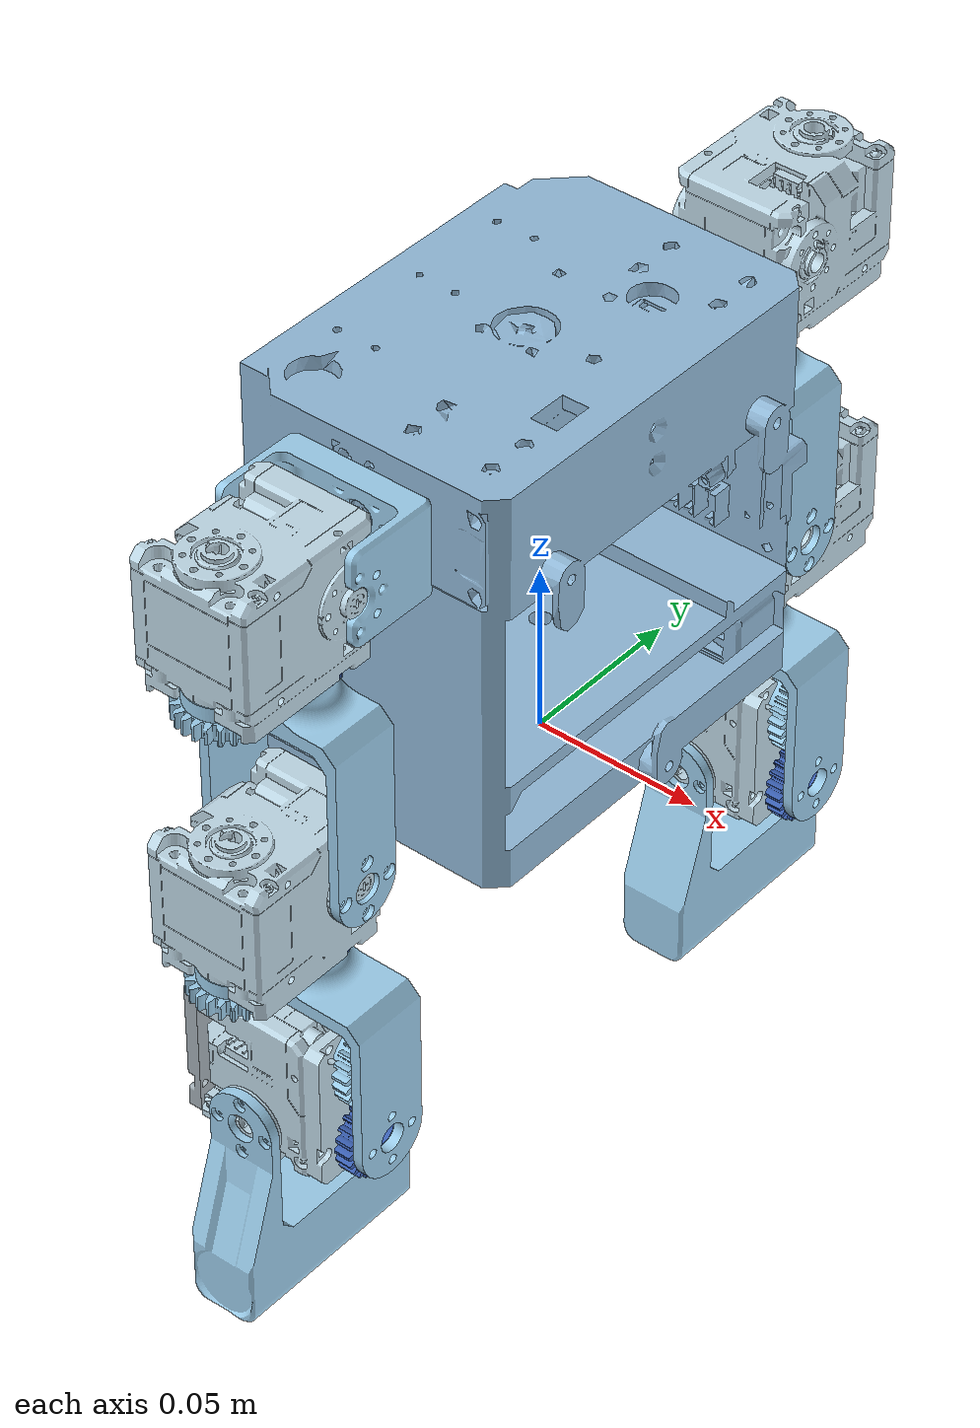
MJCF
<mujoco model="toddlerbot_arms_fixed_scene"><include file="toddlerbot_arms_fixed.xml" /><statistic center="0 0 -0.05" extent="0.6" /><visual><headlight diffuse="0.6 0.6 0.6" ambient="0.3 0.3 0.3" specular="0 0 0" /><rgba haze="0.15 0.25 0.35 1" /><global azimuth="160" elevation="-20" offwidth="1280" offheight="720" /></visual><worldbody><light pos="0 0 1.5" dir="0 0 -1" directional="true" /><camera name="perspective" pos="0.7 -0.7 0.35" xyaxes="1 1 0 -1 1 3" mode="trackcom" /><camera name="side" pos="0 -1 0.25" xyaxes="1 0 0 0 1 3" mode="trackcom" /><camera name="top" pos="0 0 0.65" xyaxes="0 1 0 -1 0 0" mode="trackcom" /><camera name="front" pos="1 0 0.25" xyaxes="0 1 0 -1 0 3" mode="trackcom" /></worldbody></mujoco>

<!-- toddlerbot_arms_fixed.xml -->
<mujoco model="toddlerbot_arms">
  <compiler angle="radian" autolimits="true" />

  <asset>
    <mesh name="torso_visual" file="../assemblies/toddlerbot_arms/meshes/torso_visual.stl" />
    <mesh name="left_sho_pitch_link_visual" file="../assemblies/left_arm_hand/meshes/left_sho_pitch_link_visual.stl" />
    <mesh name="left_2xl430_gears_visual" file="../assemblies/left_arm_hand/meshes/left_2xl430_gears_visual.stl" />
    <mesh name="left_spur_1m_24t_drive_visual" file="../assemblies/left_arm_hand/meshes/left_spur_1m_24t_drive_visual.stl" />
    <mesh name="left_spur_1m_24t_driven_visual" file="../assemblies/left_arm_hand/meshes/left_spur_1m_24t_driven_visual.stl" />
    <mesh name="left_sho_yaw_link_visual" file="../assemblies/left_arm_hand/meshes/left_sho_yaw_link_visual.stl" />
    <mesh name="left_2xl430_gears_2_visual" file="../assemblies/left_arm_hand/meshes/left_2xl430_gears_2_visual.stl" />
    <mesh name="left_spur_1m_24t_drive_2_visual" file="../assemblies/left_arm_hand/meshes/left_spur_1m_24t_drive_2_visual.stl" />
    <mesh name="left_spur_1m_24t_driven_2_visual" file="../assemblies/left_arm_hand/meshes/left_spur_1m_24t_driven_2_visual.stl" />
    <mesh name="left_elb_yaw_link_visual" file="../assemblies/left_arm_hand/meshes/left_elb_yaw_link_visual.stl" />
    <mesh name="left_spur_1m_24t_driven_3_visual" file="../assemblies/left_arm_hand/meshes/left_spur_1m_24t_driven_3_visual.stl" />
    <mesh name="left_2xl430_gears_3_visual" file="../assemblies/left_arm_hand/meshes/left_2xl430_gears_3_visual.stl" />
    <mesh name="left_spur_1m_24t_drive_3_visual" file="../assemblies/left_arm_hand/meshes/left_spur_1m_24t_drive_3_visual.stl" />
    <mesh name="left_hand_visual" file="../assemblies/left_arm_hand/meshes/left_hand_visual.stl" />
    <mesh name="left_wrist_bearing_plate_visual" file="../assemblies/left_arm_hand/meshes/left_wrist_bearing_plate_visual.stl" />
    <mesh name="right_sho_pitch_link_visual" file="../assemblies/right_arm_hand/meshes/right_sho_pitch_link_visual.stl" />
    <mesh name="right_2xl430_gears_visual" file="../assemblies/right_arm_hand/meshes/right_2xl430_gears_visual.stl" />
    <mesh name="right_spur_1m_24t_drive_visual" file="../assemblies/right_arm_hand/meshes/right_spur_1m_24t_drive_visual.stl" />
    <mesh name="right_spur_1m_24t_driven_visual" file="../assemblies/right_arm_hand/meshes/right_spur_1m_24t_driven_visual.stl" />
    <mesh name="right_sho_yaw_link_visual" file="../assemblies/right_arm_hand/meshes/right_sho_yaw_link_visual.stl" />
    <mesh name="right_2xl430_gears_2_visual" file="../assemblies/right_arm_hand/meshes/right_2xl430_gears_2_visual.stl" />
    <mesh name="right_spur_1m_24t_drive_2_visual" file="../assemblies/right_arm_hand/meshes/right_spur_1m_24t_drive_2_visual.stl" />
    <mesh name="right_spur_1m_24t_driven_2_visual" file="../assemblies/right_arm_hand/meshes/right_spur_1m_24t_driven_2_visual.stl" />
    <mesh name="right_elb_yaw_link_visual" file="../assemblies/right_arm_hand/meshes/right_elb_yaw_link_visual.stl" />
    <mesh name="right_spur_1m_24t_driven_3_visual" file="../assemblies/right_arm_hand/meshes/right_spur_1m_24t_driven_3_visual.stl" />
    <mesh name="right_2xl430_gears_3_visual" file="../assemblies/right_arm_hand/meshes/right_2xl430_gears_3_visual.stl" />
    <mesh name="right_spur_1m_24t_drive_3_visual" file="../assemblies/right_arm_hand/meshes/right_spur_1m_24t_drive_3_visual.stl" />
    <mesh name="right_hand_visual" file="../assemblies/right_arm_hand/meshes/right_hand_visual.stl" />
    <mesh name="right_wrist_bearing_plate_visual" file="../assemblies/right_arm_hand/meshes/right_wrist_bearing_plate_visual.stl" />
  </asset>

  <worldbody>
    <site name="torso" fromto="0.01 0 0.4 -0.01 0 0.4" type="cylinder" size="0.005 0.005 1" group="3" /><geom type="mesh" rgba="0.575684 0.733467 0.856322 1" mesh="torso_visual" class="visual" />
    <body name="sho_pitch_link" pos="-0.003 0.062 0.104237" quat="0.707107 -0.707107 0 0">
      <inertial pos="5.82542e-11 -5.12646e-05 0.00824408" quat="0.0155166 0.706937 0.0155166 0.706937" mass="0.0086" diaginertia="3.08064e-06 2.9104e-06 1.22729e-06" />
      <joint name="left_sho_pitch" pos="0 0 0" axis="0 0 1" range="-3.14159 1.5708" damping="0.195" armature="0.002" />
      <geom type="mesh" rgba="0.615686 0.811765 0.929412 1" mesh="left_sho_pitch_link_visual" class="visual" />
      <body name="2xl430_gears" pos="-0.019 0.001 0.027" quat="0 -0.707107 0 0.707107">
        <inertial pos="-0.0115794 -0.00242258 -0.0185511" quat="-0.0158908 0.69769 -0.13596 0.703201" mass="0.118" diaginertia="3.59112e-05 3.27863e-05 2.73235e-05" />
        <joint name="left_sho_roll" pos="0 0 0" axis="0 0 1" range="-1.5708 0" damping="0.153" armature="0.008" />
        <geom type="mesh" rgba="0.75606 0.858047 0.913203 1" mesh="left_2xl430_gears_visual" class="visual" />
        <body name="spur_1m_24t_drive" pos="-0.024 -0.019 -0.019" quat="0.707107 0.707107 0 0">
          <inertial pos="0 0 0.00479491" quat="0.5 0.5 -0.5 0.5" mass="0.0032" diaginertia="2.38389e-07 1.40193e-07 1.40193e-07" />
          <joint name="left_sho_yaw_drive" pos="0 0 0" axis="0 0 1" range="-1.5708 1.5708" damping="0.153" armature="0.008" />
          <geom type="mesh" rgba="0.615686 0.811765 0.929412 1" mesh="left_spur_1m_24t_drive_visual" class="visual" />
        </body>
        <body name="spur_1m_24t_driven" pos="-3.58071e-10 -0.027 -0.019" quat="0.707107 0.707107 0 0">
          <inertial pos="0 0 0.0216102" mass="0.0172" diaginertia="1.08021e-05 7.42977e-06 4.68733e-06" />
          <joint name="left_sho_yaw_driven" pos="0 0 0" axis="0 0 1" range="-1.5708 1.5708" damping="0.153" armature="0.008" />
          <geom type="mesh" rgba="0.231373 0.380392 0.705882 1" mesh="left_spur_1m_24t_driven_visual" class="visual" />
          <geom pos="0 0 0.0016" quat="0 -1 0 0" type="mesh" rgba="0.615686 0.811765 0.929412 1" mesh="left_sho_yaw_link_visual" class="visual" />
          <body name="2xl430_gears_2" pos="0 0.019 0.0606" quat="0.707107 -0.707107 0 0">
            <inertial pos="-0.0115794 -0.00242258 -0.0185511" quat="-0.0158908 0.69769 -0.13596 0.703201" mass="0.118" diaginertia="3.59112e-05 3.27863e-05 2.73235e-05" />
            <joint name="left_elbow_roll" pos="0 0 0" axis="0 0 1" range="-1.5708 1.5708" damping="0.153" armature="0.008" />
            <geom type="mesh" rgba="0.75606 0.858047 0.913203 1" mesh="left_2xl430_gears_2_visual" class="visual" />
            <body name="spur_1m_24t_drive_2" pos="-0.024 -0.019 -0.019" quat="0.707107 0.707107 0 0">
              <inertial pos="0 0 0.00479491" quat="0.5 0.5 -0.5 0.5" mass="0.0032" diaginertia="2.38389e-07 1.40193e-07 1.40193e-07" />
              <joint name="left_elbow_yaw_drive" pos="0 0 0" axis="0 0 1" range="-1.5708 1.5708" damping="0.153" armature="0.008" />
              <geom type="mesh" rgba="0.615686 0.811765 0.929412 1" mesh="left_spur_1m_24t_drive_2_visual" class="visual" />
            </body>
            <body name="spur_1m_24t_driven_2" pos="-3.58069e-10 -0.027 -0.019" quat="0.5 0.5 0.5 -0.5">
              <inertial pos="0.00116139 -4.04035e-08 0.025284" quat="0.665601 0.238694 0.238694 0.665601" mass="0.0229" diaginertia="1.97992e-05 1.15815e-05 1.01733e-05" />
              <joint name="left_elbow_yaw_driven" pos="0 0 0" axis="0 0 1" range="-1.5708 1.5708" damping="0.153" armature="0.008" />
              <geom type="mesh" rgba="0.231373 0.380392 0.705882 1" mesh="left_spur_1m_24t_driven_2_visual" class="visual" />
              <geom pos="0 0 0.0016" quat="0 0.707107 -0.707107 0" type="mesh" rgba="0.615686 0.811765 0.929412 1" mesh="left_elb_yaw_link_visual" class="visual" />
              <geom pos="0.0253 0 0.0536" quat="-0.707107 0 -0.707107 0" type="mesh" rgba="0.231373 0.380392 0.705882 1" mesh="left_spur_1m_24t_driven_3_visual" class="visual" />
              <body name="2xl430_gears_3" pos="0.0237 0 0.0536" quat="-0.5 0.5 -0.5 0.5">
                <inertial pos="0.000431007 0.0114203 -0.025465" quat="0.750271 0.658201 -0.0437595 0.0441611" mass="0.1229" diaginertia="3.89635e-05 3.40271e-05 3.0248e-05" />
                <joint name="left_wrist_roll_driven" pos="0 0 0" axis="0 0 1" range="-1.5708 1.5708" damping="0.153" armature="0.008" />
                <geom type="mesh" rgba="0.75606 0.858047 0.913203 1" mesh="left_2xl430_gears_3_visual" class="visual" />
                <geom pos="0.0155 0 -0.045" quat="0.707107 0 0 -0.707107" type="mesh" rgba="0.644963 0.690118 0.717068 1" mesh="left_wrist_bearing_plate_visual" class="visual" />
                <body name="spur_1m_24t_drive_3" pos="-1.52441e-10 0.024 -0.008" quat="0.707107 0 0 -0.707107">
                  <inertial pos="0 0 0.00479491" quat="0.5 0.5 -0.5 0.5" mass="0.0032" diaginertia="2.38389e-07 1.40193e-07 1.40193e-07" />
                  <joint name="left_wrist_roll_drive" pos="0 0 0" axis="0 0 1" range="-1.5708 1.5708" damping="0.153" armature="0.008" />
                  <geom type="mesh" rgba="0.615686 0.811765 0.929412 1" mesh="left_spur_1m_24t_drive_3_visual" class="visual" />
                </body>
                <body name="hand" pos="0.019 -3.58081e-10 -0.027" quat="0.707107 0 0.707107 0">
                  <inertial pos="-4.30384e-08 -0.0497238 -0.0179336" quat="0.739676 0.672963 4.83075e-07 -2.50564e-06" mass="0.017" diaginertia="9.49214e-06 6.68579e-06 4.0511e-06" />
                  <joint name="left_wrist_pitch" pos="0 0 0" axis="0 0 1" range="-1.5708 1.5708" damping="0.153" armature="0.008" />
                  <geom type="mesh" rgba="0.615686 0.811765 0.929412 1" mesh="left_hand_visual" class="visual" />
                </body>
              </body>
            </body>
          </body>
        </body>
      </body>
    </body>
    <body name="sho_pitch_link_2" pos="-0.003 -0.062 0.104237" quat="0 0 0.707107 -0.707107">
      <inertial pos="5.82542e-11 -5.12646e-05 0.00824408" quat="0.0155166 0.706937 0.0155166 0.706937" mass="0.0086" diaginertia="3.08064e-06 2.9104e-06 1.22729e-06" />
      <joint name="right_sho_pitch" pos="0 0 0" axis="0 0 1" range="-1.5708 3.14159" damping="0.195" armature="0.002" />
      <geom type="mesh" rgba="0.615686 0.811765 0.929412 1" mesh="right_sho_pitch_link_visual" class="visual" />
      <body name="2xl430_gears_4" pos="-0.019 0.001 0.027" quat="0 0.707107 0 -0.707107">
        <inertial pos="-0.0115794 -0.00242258 -0.0185511" quat="-0.0158908 0.69769 -0.13596 0.703201" mass="0.118" diaginertia="3.59112e-05 3.27863e-05 2.73235e-05" />
        <joint name="right_sho_roll" pos="0 0 0" axis="0 0 1" range="-1.5708 0" damping="0.153" armature="0.008" />
        <geom type="mesh" rgba="0.75606 0.858047 0.913203 1" mesh="right_2xl430_gears_visual" class="visual" />
        <body name="spur_1m_24t_drive_4" pos="-0.024 -0.019 -0.019" quat="0.707107 0.707107 0 0">
          <inertial pos="0 0 0.00479491" quat="0.5 0.5 -0.5 0.5" mass="0.0032" diaginertia="2.38389e-07 1.40193e-07 1.40193e-07" />
          <joint name="right_sho_yaw_drive" pos="0 0 0" axis="0 0 1" range="-1.5708 1.5708" damping="0.153" armature="0.008" />
          <geom type="mesh" rgba="0.615686 0.811765 0.929412 1" mesh="right_spur_1m_24t_drive_visual" class="visual" />
        </body>
        <body name="spur_1m_24t_driven_4" pos="-3.58067e-10 -0.027 -0.019" quat="0.707107 0.707107 0 0">
          <inertial pos="0 0 0.0216102" mass="0.0172" diaginertia="1.08021e-05 7.42977e-06 4.68733e-06" />
          <joint name="right_sho_yaw_driven" pos="0 0 0" axis="0 0 1" range="-1.5708 1.5708" damping="0.153" armature="0.008" />
          <geom type="mesh" rgba="0.231373 0.380392 0.705882 1" mesh="right_spur_1m_24t_driven_visual" class="visual" />
          <geom pos="0 0 0.0016" quat="0 -1 0 0" type="mesh" rgba="0.615686 0.811765 0.929412 1" mesh="right_sho_yaw_link_visual" class="visual" />
          <body name="2xl430_gears_5" pos="0 0.019 0.0606" quat="0.707107 -0.707107 0 0">
            <inertial pos="-0.0115794 -0.00242258 -0.0185511" quat="-0.0158908 0.69769 -0.13596 0.703201" mass="0.118" diaginertia="3.59112e-05 3.27863e-05 2.73235e-05" />
            <joint name="right_elbow_roll" pos="0 0 0" axis="0 0 1" range="-1.5708 1.5708" damping="0.153" armature="0.008" />
            <geom type="mesh" rgba="0.75606 0.858047 0.913203 1" mesh="right_2xl430_gears_2_visual" class="visual" />
            <body name="spur_1m_24t_drive_5" pos="-0.024 -0.019 -0.019" quat="0.707107 0.707107 0 0">
              <inertial pos="0 0 0.00479491" quat="0.5 0.5 -0.5 0.5" mass="0.0032" diaginertia="2.38389e-07 1.40193e-07 1.40193e-07" />
              <joint name="right_elbow_yaw_drive" pos="0 0 0" axis="0 0 1" range="-1.5708 1.5708" damping="0.153" armature="0.008" />
              <geom type="mesh" rgba="0.615686 0.811765 0.929412 1" mesh="right_spur_1m_24t_drive_2_visual" class="visual" />
            </body>
            <body name="spur_1m_24t_driven_5" pos="-3.58071e-10 -0.027 -0.019" quat="0.707107 0.707107 0 0">
              <inertial pos="4.04035e-08 0.00116139 0.025284" quat="0.941302 -0.337564 0 0" mass="0.0229" diaginertia="1.97992e-05 1.15815e-05 1.01733e-05" />
              <joint name="right_elbow_yaw_driven" pos="0 0 0" axis="0 0 1" range="-1.5708 1.5708" damping="0.153" armature="0.008" />
              <geom type="mesh" rgba="0.231373 0.380392 0.705882 1" mesh="right_spur_1m_24t_driven_2_visual" class="visual" />
              <geom pos="0 0 0.0016" quat="0 -1 0 0" type="mesh" rgba="0.615686 0.811765 0.929412 1" mesh="right_elb_yaw_link_visual" class="visual" />
              <geom pos="0 0.0253 0.0536" quat="0.5 -0.5 -0.5 -0.5" type="mesh" rgba="0.231373 0.380392 0.705882 1" mesh="right_spur_1m_24t_driven_3_visual" class="visual" />
              <body name="2xl430_gears_6" pos="0 0.0237 0.0536" quat="0.707107 -0.707107 0 0">
                <inertial pos="0.000431007 0.0114203 -0.025465" quat="0.750271 0.658201 -0.0437595 0.0441611" mass="0.1229" diaginertia="3.89635e-05 3.40271e-05 3.0248e-05" />
                <joint name="right_wrist_roll_driven" pos="0 0 0" axis="0 0 1" range="-1.5708 1.5708" damping="0.153" armature="0.008" />
                <geom type="mesh" rgba="0.75606 0.858047 0.913203 1" mesh="right_2xl430_gears_3_visual" class="visual" />
                <geom pos="0.0155 0 -0.045" quat="0.707107 0 0 -0.707107" type="mesh" rgba="0.644963 0.690118 0.717068 1" mesh="right_wrist_bearing_plate_visual" class="visual" />
                <body name="spur_1m_24t_drive_6" pos="-1.52443e-10 0.024 -0.008" quat="0.707107 0 0 -0.707107">
                  <inertial pos="0 0 0.00479491" quat="0.5 0.5 -0.5 0.5" mass="0.0032" diaginertia="2.38389e-07 1.40193e-07 1.40193e-07" />
                  <joint name="right_wrist_roll_drive" pos="0 0 0" axis="0 0 1" range="-1.5708 1.5708" damping="0.153" armature="0.008" />
                  <geom type="mesh" rgba="0.615686 0.811765 0.929412 1" mesh="right_spur_1m_24t_drive_3_visual" class="visual" />
                </body>
                <body name="hand_2" pos="0.019 -3.58068e-10 -0.027" quat="0 0.707107 0 0.707107">
                  <inertial pos="-4.30384e-08 0.0497238 -0.0200664" quat="0.739676 0.672963 -4.83075e-07 2.50564e-06" mass="0.017" diaginertia="9.49214e-06 6.68579e-06 4.0511e-06" />
                  <joint name="right_wrist_pitch" pos="0 0 0" axis="0 0 1" range="-1.5708 1.5708" damping="0.153" armature="0.008" />
                  <geom type="mesh" rgba="0.615686 0.811765 0.929412 1" mesh="right_hand_visual" class="visual" />
                </body>
              </body>
            </body>
          </body>
        </body>
      </body>
    </body>
  </worldbody>
<option><flag eulerdamp="disable" /></option><actuator><position name="left_sho_pitch" joint="left_sho_pitch" kp="18.75" ctrlrange="-3.14159 1.5708" class="XC430" /><position name="left_sho_roll" joint="left_sho_roll" kp="18.75" ctrlrange="-1.5708 0" class="2XL430" /><position name="left_sho_yaw_drive" joint="left_sho_yaw_driven" kp="18.75" gear="1.0" ctrlrange="-1.5708 1.5708" class="2XL430" /><position name="left_elbow_roll" joint="left_elbow_roll" kp="18.75" ctrlrange="-1.5708 1.5708" class="2XL430" /><position name="left_elbow_yaw_drive" joint="left_elbow_yaw_driven" kp="18.75" gear="1.0" ctrlrange="-1.5708 1.5708" class="2XL430" /><position name="left_wrist_roll_drive" joint="left_wrist_roll_driven" kp="18.75" gear="1.0" ctrlrange="-1.5708 1.5708" class="2XL430" /><position name="left_wrist_pitch" joint="left_wrist_pitch" kp="18.75" ctrlrange="-1.5708 1.5708" class="2XL430" /><position name="right_sho_pitch" joint="right_sho_pitch" kp="18.75" ctrlrange="-1.5708 3.14159" class="XC430" /><position name="right_sho_roll" joint="right_sho_roll" kp="18.75" ctrlrange="-1.5708 0" class="2XL430" /><position name="right_sho_yaw_drive" joint="right_sho_yaw_driven" kp="18.75" gear="1.0" ctrlrange="-1.5708 1.5708" class="2XL430" /><position name="right_elbow_roll" joint="right_elbow_roll" kp="18.75" ctrlrange="-1.5708 1.5708" class="2XL430" /><position name="right_elbow_yaw_drive" joint="right_elbow_yaw_driven" kp="18.75" gear="1.0" ctrlrange="-1.5708 1.5708" class="2XL430" /><position name="right_wrist_roll_drive" joint="right_wrist_roll_driven" kp="18.75" gear="1.0" ctrlrange="-1.5708 1.5708" class="2XL430" /><position name="right_wrist_pitch" joint="right_wrist_pitch" kp="18.75" ctrlrange="-1.5708 1.5708" class="2XL430" /></actuator><keyframe><key name="home" qpos="0.174533 -0.261799 0 -1.0472 0.523599 0 -0.523599 -1.0472 0 0 -0.174533 -0.261799 0 1.0472 0.523599 0 0.523599 1.0472 0 0" ctrl="0.174533 -0.261799 -1.0472 0.523599 -0.523599 -1.0472 0 -0.174533 -0.261799 1.0472 0.523599 0.523599 1.0472 0" /></keyframe><default><default class="XM430"><position forcerange="-3 3" /></default><default class="XC430"><position forcerange="-2 2" /></default><default class="2XC430"><position forcerange="-2 2" /></default><default class="XL430"><position forcerange="-2 2" /></default><default class="2XL430"><position forcerange="-2 2" /></default><default class="XC330"><position forcerange="-1 1" /></default><default class="visual"><geom type="mesh" contype="0" conaffinity="0" group="2" /></default><default class="collision"><geom type="sphere" group="3" /></default></default><contact /></mujoco>
